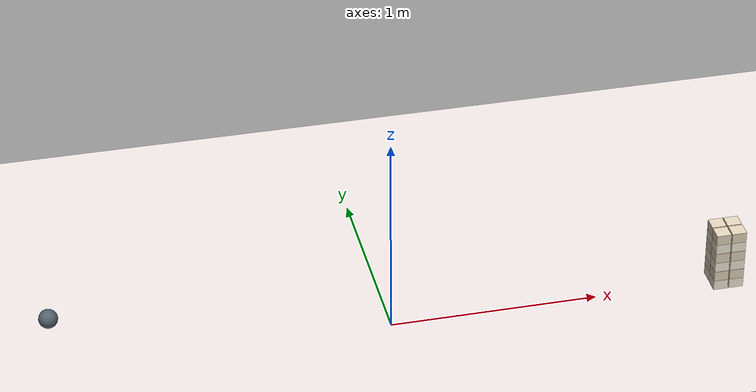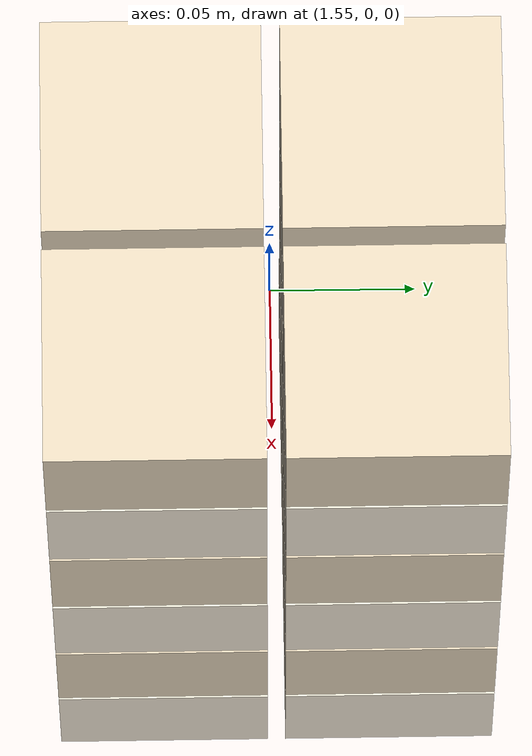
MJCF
<mujoco model="projectile_jenga">
  <compiler angle="radian" coordinate="local" autolimits="true"/>
  <option timestep="0.002" gravity="0 0 -9.81" integrator="implicitfast"
          impratio="3" cone="elliptic"/>

  <visual>
    <headlight diffuse="0 0 0" ambient="0.50 0.48 0.55" specular="0 0 0"/>
    <rgba haze="0.94 0.91 0.90 1"/>
    <global azimuth="120" elevation="-15" offwidth="1920" offheight="1080" fovy="38"/>
    <quality shadowsize="8192" offsamples="8"/>
    <map shadowclip="6" shadowscale="0.7"/>
  </visual>

  <asset>
    <texture type="skybox" builtin="flat"
             rgb1="0.74 0.68 0.86" rgb2="0.74 0.68 0.86"
             width="512" height="512"
             mark="none" markrgb="0 0 0"/>

    <material name="floor_mat" rgba="0.94 0.91 0.90 1"
              specular="0.0" shininess="0.0"/>
    <material name="block_cream" rgba="0.96 0.92 0.85 1"
              specular="0.1" shininess="0.1"/>
    <material name="block_cream_dark" rgba="0.90 0.84 0.74 1"
              specular="0.1" shininess="0.1"/>
    <material name="projectile_dark" rgba="0.32 0.38 0.42 1"
              specular="0.3" shininess="0.4"/>
  </asset>

  <default>
    <geom friction="0.7 0.04 0.001" solref="0.005 1" solimp="0.95 0.99 0.001"/>
  </default>

  <worldbody>
    <light pos="0 0 12" dir="-0.30 0.55 -1" directional="true" castshadow="true"
           diffuse="0.85 0.82 0.78" specular="0.15 0.15 0.15"/>
    <light pos="0 0 8" dir="0.40 -0.30 -1" directional="true" castshadow="false"
           diffuse="0.28 0.28 0.34" specular="0 0 0"/>

    <geom name="floor" type="plane" size="40 40 0.1" material="floor_mat"/>

    <!-- Projectile: small dense sphere ("cannonball"), launched from the left.
         Heavier than the entire tower so it'll definitely topple it. -->
    <body name="projectile" pos="-1.6 0 0.30">
      <joint name="proj_free" type="free"/>
      <geom name="proj_geom" type="sphere" size="0.045"
            mass="2.0" material="projectile_dark"/>
    </body>

    <!-- Jenga-like tower at +x. 2 wide x 2 deep x 6 layers = 24 blocks.
         Each block: 0.07 x 0.07 x 0.05 (LxWxH).
         Alternate block color slightly per layer for visual interest. -->
    <!-- Layer 0 -->
    <body pos="1.6 -0.038 0.026"><joint type="free"/><geom type="box" size="0.035 0.035 0.025" mass="0.06" material="block_cream"/></body>
    <body pos="1.6  0.038 0.026"><joint type="free"/><geom type="box" size="0.035 0.035 0.025" mass="0.06" material="block_cream"/></body>
    <body pos="1.676 -0.038 0.026"><joint type="free"/><geom type="box" size="0.035 0.035 0.025" mass="0.06" material="block_cream"/></body>
    <body pos="1.676  0.038 0.026"><joint type="free"/><geom type="box" size="0.035 0.035 0.025" mass="0.06" material="block_cream"/></body>
    <!-- Layer 1 -->
    <body pos="1.6 -0.038 0.078"><joint type="free"/><geom type="box" size="0.035 0.035 0.025" mass="0.06" material="block_cream_dark"/></body>
    <body pos="1.6  0.038 0.078"><joint type="free"/><geom type="box" size="0.035 0.035 0.025" mass="0.06" material="block_cream_dark"/></body>
    <body pos="1.676 -0.038 0.078"><joint type="free"/><geom type="box" size="0.035 0.035 0.025" mass="0.06" material="block_cream_dark"/></body>
    <body pos="1.676  0.038 0.078"><joint type="free"/><geom type="box" size="0.035 0.035 0.025" mass="0.06" material="block_cream_dark"/></body>
    <!-- Layer 2 -->
    <body pos="1.6 -0.038 0.130"><joint type="free"/><geom type="box" size="0.035 0.035 0.025" mass="0.06" material="block_cream"/></body>
    <body pos="1.6  0.038 0.130"><joint type="free"/><geom type="box" size="0.035 0.035 0.025" mass="0.06" material="block_cream"/></body>
    <body pos="1.676 -0.038 0.130"><joint type="free"/><geom type="box" size="0.035 0.035 0.025" mass="0.06" material="block_cream"/></body>
    <body pos="1.676  0.038 0.130"><joint type="free"/><geom type="box" size="0.035 0.035 0.025" mass="0.06" material="block_cream"/></body>
    <!-- Layer 3 -->
    <body pos="1.6 -0.038 0.182"><joint type="free"/><geom type="box" size="0.035 0.035 0.025" mass="0.06" material="block_cream_dark"/></body>
    <body pos="1.6  0.038 0.182"><joint type="free"/><geom type="box" size="0.035 0.035 0.025" mass="0.06" material="block_cream_dark"/></body>
    <body pos="1.676 -0.038 0.182"><joint type="free"/><geom type="box" size="0.035 0.035 0.025" mass="0.06" material="block_cream_dark"/></body>
    <body pos="1.676  0.038 0.182"><joint type="free"/><geom type="box" size="0.035 0.035 0.025" mass="0.06" material="block_cream_dark"/></body>
    <!-- Layer 4 -->
    <body pos="1.6 -0.038 0.234"><joint type="free"/><geom type="box" size="0.035 0.035 0.025" mass="0.06" material="block_cream"/></body>
    <body pos="1.6  0.038 0.234"><joint type="free"/><geom type="box" size="0.035 0.035 0.025" mass="0.06" material="block_cream"/></body>
    <body pos="1.676 -0.038 0.234"><joint type="free"/><geom type="box" size="0.035 0.035 0.025" mass="0.06" material="block_cream"/></body>
    <body pos="1.676  0.038 0.234"><joint type="free"/><geom type="box" size="0.035 0.035 0.025" mass="0.06" material="block_cream"/></body>
    <!-- Layer 5 (top) -->
    <body pos="1.6 -0.038 0.286"><joint type="free"/><geom type="box" size="0.035 0.035 0.025" mass="0.06" material="block_cream_dark"/></body>
    <body pos="1.6  0.038 0.286"><joint type="free"/><geom type="box" size="0.035 0.035 0.025" mass="0.06" material="block_cream_dark"/></body>
    <body pos="1.676 -0.038 0.286"><joint type="free"/><geom type="box" size="0.035 0.035 0.025" mass="0.06" material="block_cream_dark"/></body>
    <body pos="1.676  0.038 0.286"><joint type="free"/><geom type="box" size="0.035 0.035 0.025" mass="0.06" material="block_cream_dark"/></body>

    <!-- Camera: distance ~2.55m so 3.3m wide scene fits the 16:9 frame.
         Position from (-0.5, -2.3, 0.7) looking toward (0.5, 0, 0.25). -->
    <camera name="cam" pos="-0.5 -2.3 0.7" fovy="40"
            xyaxes="0.917 -0.398 0   0.070 0.161 0.984"/>
  </worldbody>
</mujoco>
